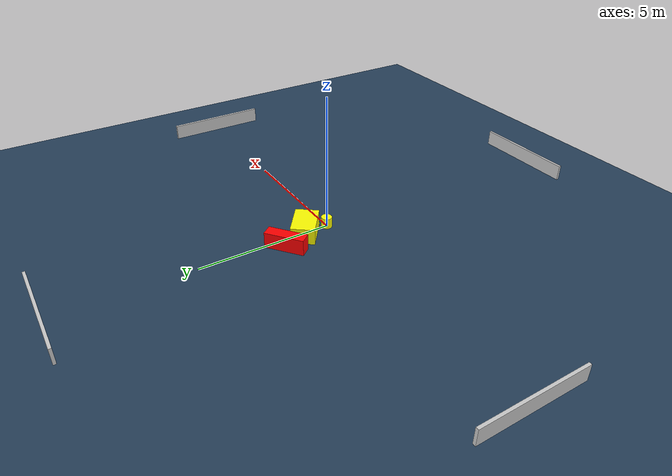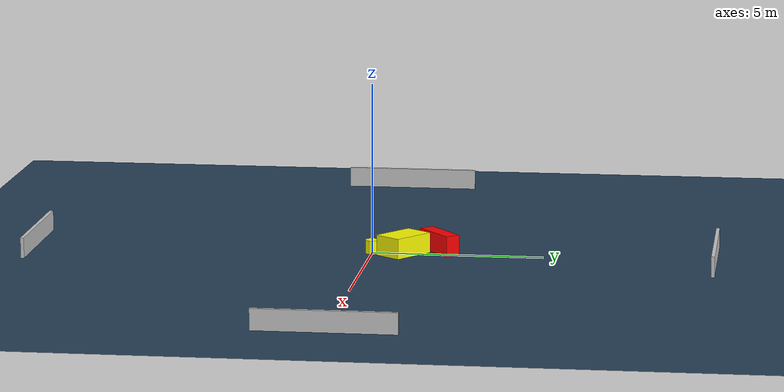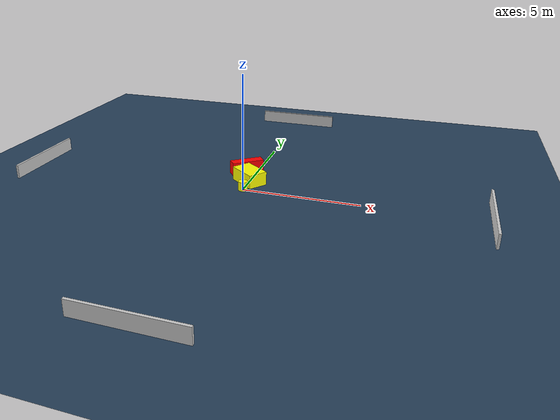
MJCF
<?xml version="1.0" ?>
<mujoco model="generated_environment">
  <option timestep="0.01" integrator="RK4" cone="elliptic"/>
  <default>
    <geom density="1"/>
  </default>
  <asset>
    <texture builtin="gradient" height="3072" name="skybox" rgb1="0.3 0.5 0.7" rgb2="0 0 0" type="skybox" width="512"/>
    <texture builtin="checker" height="300" name="groundplane" rgb1="0.2 0.3 0.4" rgb2="0.1 0.2 0.3" type="2d" width="300"/>
    <material name="groundplane" reflectance="0.2" texrepeat="5 5" texture="groundplane"/>
  </asset>
  <worldbody>
    <light dir="0 0 -1" directional="true" pos="0 0 1.5"/>
    <geom condim="3" friction="0.5 0.005 0.001" material="groundplane" name="floor" pos="0 0 0" size="0 0 0.05" type="plane"/>
    <body name="walls">
      <geom name="wall_1" condim="4" pos="-10.0 0.0 0.3" rgba="0.800000011920929 0.800000011920929 0.800000011920929 1.0" size="0.05 2.0 0.3" type="box"/>
      <geom name="wall_2" condim="4" pos="10.0 0.0 0.3" rgba="0.800000011920929 0.800000011920929 0.800000011920929 1.0" size="0.05 2.0 0.3" type="box"/>
      <geom name="wall_3" condim="4" pos="0.0 -10.0 0.3" rgba="0.800000011920929 0.800000011920929 0.800000011920929 1.0" size="2.0 0.05 0.3" type="box"/>
      <geom name="wall_4" condim="4" pos="0.0 10.0 0.3" rgba="0.800000011920929 0.800000011920929 0.800000011920929 1.0" size="2.0 0.05 0.3" type="box"/>
    </body>
    <body name="robot">
      <joint name="joint_x" type="slide" pos="0 0 0" axis="1 0 0"/>
      <joint name="joint_y" type="slide" pos="0 0 0" axis="0 1 0"/>
      <geom name="robot" type="cylinder" pos="0.0 0.0 0.2" size="0.2 0.2 0.0" mass="5.0" friction="1.0 0.005 0.0001" condim="4" rgba="1.0 1.0 0.0 1.0"/>
    </body>
    <body name="obstacle_1_movable">
      <geom name="obstacle_1_movable" condim="4" pos="-0.006457053878774147 0.9120933427728731 0.3" euler="0 0 52.39213433514843" friction="0.0 0.005 0.001" rgba="1.0 1.0 0.0 1.0" size="0.4374174733121619 0.6671298616433883 0.3" type="box" mass="0.1"/>
      <joint type="free"/>
    </body>
    <body name="obstacle_2_static">
      <geom name="obstacle_2_static" condim="4" pos="-0.45883979094146427 1.9298795730855371 0.3" euler="0 0 307.97134312913835" friction="0.0 0.005 0.001" rgba="1.0 0.0 0.0 1.0" size="0.21915942681974052 0.7336903496138065 0.3" type="box"/>
    </body>
  </worldbody>
  <actuator>
    <motor name="actuator_x" joint="joint_x" gear="1" ctrlrange="-1 1"/>
    <motor name="actuator_y" joint="joint_y" gear="1" ctrlrange="-1 1"/>
  </actuator>
</mujoco>
